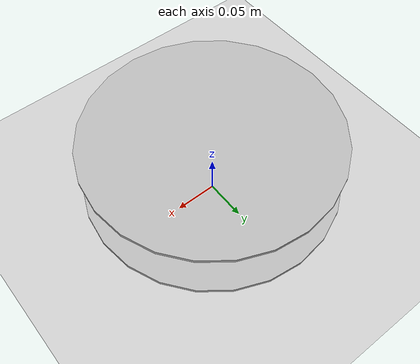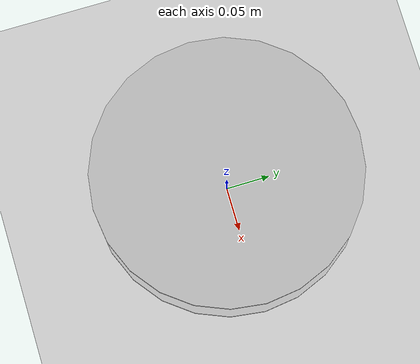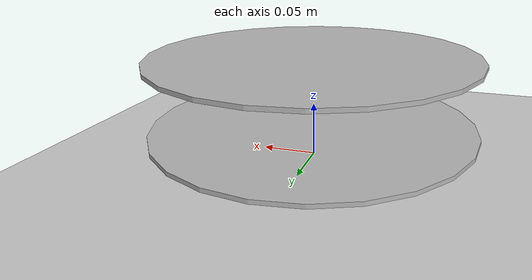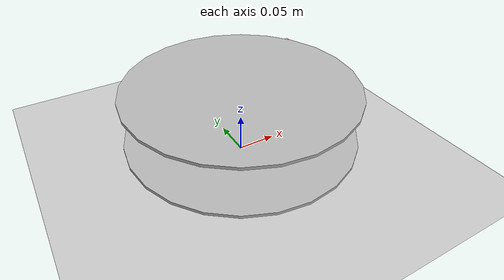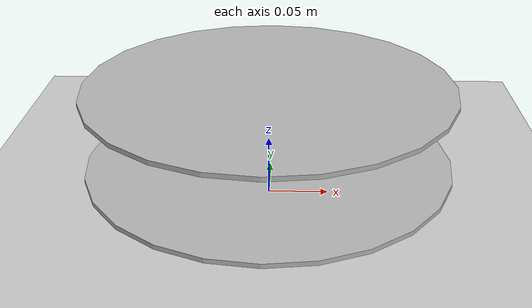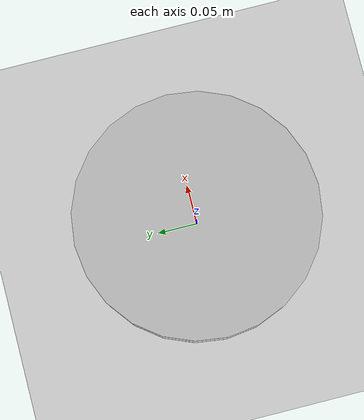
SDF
<?xml version="1.0" ?>
<sdf version="1.5">
  <world name="default">

    <!-- A global light source -->
    <include>
      <uri>model://sun</uri>
    </include>

    <!-- A ground plane -->
    <include>
      <uri>model://ground_plane</uri>
    </include>
    <model name="hexapod_3">
      <!-- Give the base link a unique name -->
      <link name="base">

        <!-- Offset the base by half the length of the cylinder -->
        <pose>0 0 0.029335 0 0 0</pose>
        <collision name="base_collision">
          <geometry>
            <cylinder>
              <!-- Radius and length provided by Velodyne -->
              <radius>.15050</radius>
              <length>.00369</length>
            </cylinder>
          </geometry>
        </collision>

        <!-- The visual is mostly a copy of the collision -->
        <visual name="base_visual">
          <geometry>
            <cylinder>
              <radius>.15050</radius>
              <length>.00369</length>
            </cylinder>
          </geometry>
        </visual>
      </link>

      <!-- Give the base link a unique name -->
      <link name="top">

        <!-- Vertically offset the top cylinder by the length of the bottom
            cylinder and half the length of this cylinder. -->
        <pose>0 0 0.095455 0 0 0</pose>
        <collision name="top_collision">
          <geometry>
            <cylinder>
              <!-- Radius and length provided by Velodyne -->
              <radius>.15050</radius>
              <length>.00369</length>
            </cylinder>
          </geometry>
        </collision>

        <!-- The visual is mostly a copy of the collision -->
        <visual name="top_visual">
          <geometry>
            <cylinder>
              <radius>.15050</radius>
              <length>.00369</length>
            </cylinder>
          </geometry>
        </visual>
      </link>
    </model>

  </world>
</sdf>
